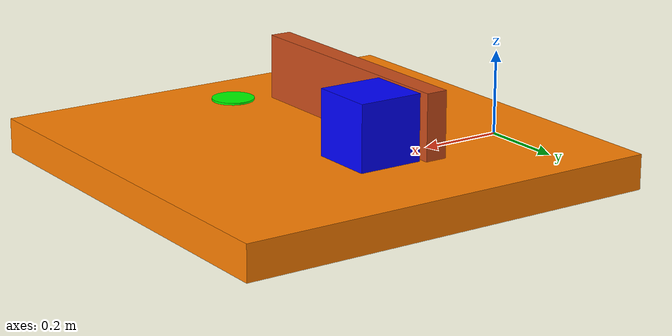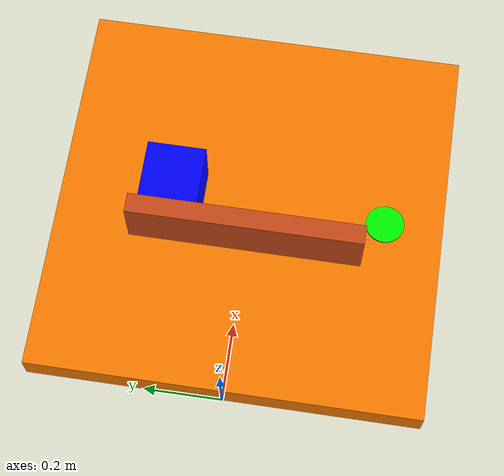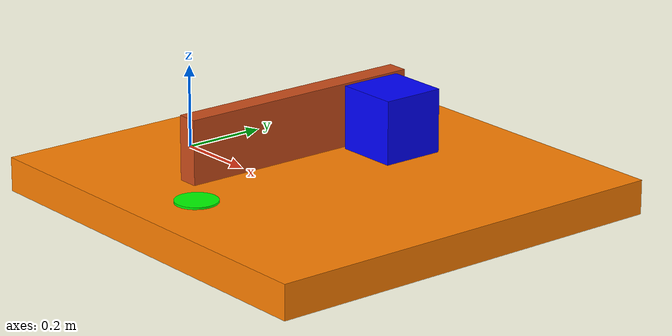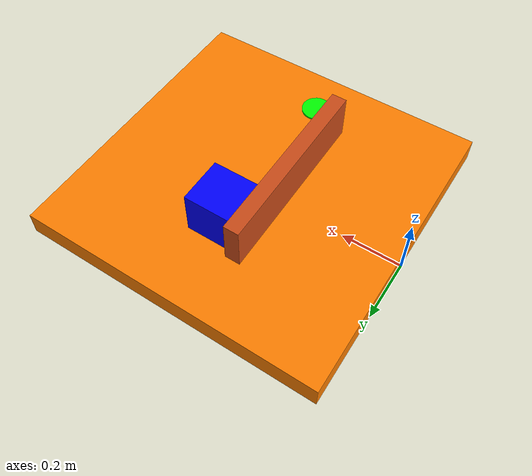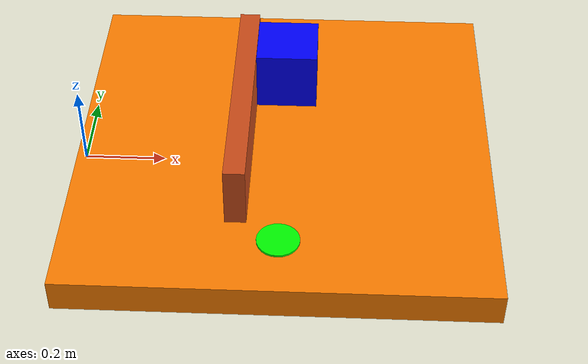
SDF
<?xml version="1.0" ?>
<sdf version="1.6">
  <world name="default">
    <gui fullscreen="0">

      <!-- 3D scene -->
      <plugin filename="MinimalScene" name="3D View">
        <gz-gui>
          <title>3D View</title>
          <property type="bool" key="showTitleBar">false</property>
          <property type="string" key="state">docked</property>
        </gz-gui>

        <engine>ogre2</engine>
        <scene>scene</scene>
        <ambient_light>1.0 1.0 1.0</ambient_light>
        <background_color>0.4 0.6 1.0</background_color>
        <camera_pose>2.0 0.0 1.2 0 0.3 3.14159</camera_pose>
      </plugin>
      <plugin filename="GzSceneManager" name="Scene Manager">
        <gz-gui>
          <property key="resizable" type="bool">false</property>
          <property key="width" type="double">5</property>
          <property key="height" type="double">5</property>
          <property key="state" type="string">floating</property>
          <property key="showTitleBar" type="bool">false</property>
        </gz-gui>
      </plugin>
      <plugin filename="InteractiveViewControl" name="Interactive view control">
        <gz-gui>
          <property key="resizable" type="bool">false</property>
          <property key="width" type="double">5</property>
          <property key="height" type="double">5</property>
          <property key="state" type="string">floating</property>
          <property key="showTitleBar" type="bool">false</property>
        </gz-gui>
      </plugin>
    </gui>

    <model name="table">
      <static>true</static>
      <pose>0.5 0 0.04 0 0 0</pose>
      <link name="link">
        <collision name="collision">
          <geometry>
            <box>
              <size>1.0 1.0 0.08</size>
            </box>
          </geometry>
          <surface>
            <friction>
              <ode>
                <mu>0.05</mu>
                <mu2>0.05</mu2>
              </ode>
            </friction>
          </surface>
        </collision>
        <visual name="visual">
          <geometry>
            <box>
              <size>1.0 1.0 0.08</size>
            </box>
          </geometry>
          <material>
            <ambient>1.0 0.5 0.0 1.0</ambient>
            <diffuse>1.0 0.5 0.0 1.0</diffuse>
          </material>
        </visual>
      </link>
    </model>

    <model name="push_block">
      <pose>0.5 0.2 0.155 0 0 0</pose>
      <link name="link">
        <inertial>
          <mass>0.1</mass>
          <inertia>
            <ixx>0.0001</ixx>
            <ixy>0</ixy>
            <ixz>0</ixz>
            <iyy>0.0001</iyy>
            <iyz>0</iyz>
            <izz>0.0001</izz>
          </inertia>
        </inertial>
        <collision name="collision">
          <geometry>
            <box>
              <size>0.15 0.15 0.15</size>
            </box>
          </geometry>
           <surface>
            <friction>
              <ode>
                <mu>0.05</mu>
                <mu2>0.05</mu2>
              </ode>
            </friction>
          </surface>
        </collision>
        <visual name="visual">
          <geometry>
            <box>
              <size>0.15 0.15 0.15</size>
            </box>
          </geometry>
          <material>
            <ambient>0.0 0.0 1.0 1.0</ambient>
            <diffuse>0.0 0.0 1.0 1.0</diffuse>
          </material>
        </visual>
      </link>
    </model>

    <model name="target_zone">
        <static>true</static>
        <pose>0.5 -0.35 0.0825 0 0 0</pose>
        <link name="link">
            <visual name="visual">
                <geometry>
                    <cylinder>
                        <radius>0.05</radius>
                        <length>0.005</length>
                    </cylinder>
                </geometry>
                <material>
                    <ambient>0.0 1.0 0.0 1.0</ambient>
                    <diffuse>0.0 1.0 0.0 1.0</diffuse>
                </material>
            </visual>
        </link>
    </model>

    <model name="brick_wall">
      <static>true</static>
      <pose>0.4 0.0 0.16 0 0 0</pose>
      <link name="link">
        <collision name="collision">
          <geometry>
            <box>
              <size>0.05 1.0 0.16</size>
            </box>
          </geometry>
        </collision>
        <visual name="visual">
          <geometry>
            <box>
              <size>0.05 0.6 0.15</size>
            </box>
          </geometry>
          <material>
            <ambient>0.8 0.3 0.1 1.0</ambient>
            <diffuse>0.8 0.3 0.1 1.0</diffuse>
          </material>
        </visual>
      </link>
    </model>

  </world>
</sdf>
